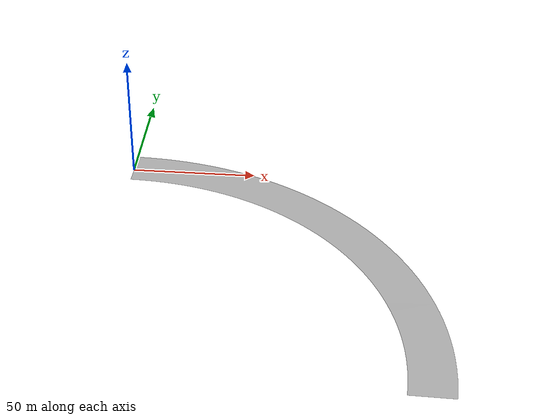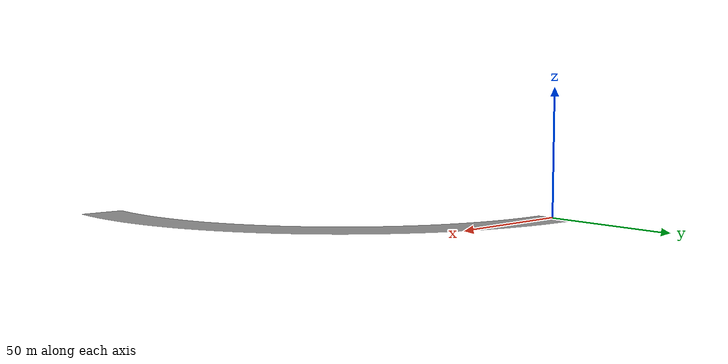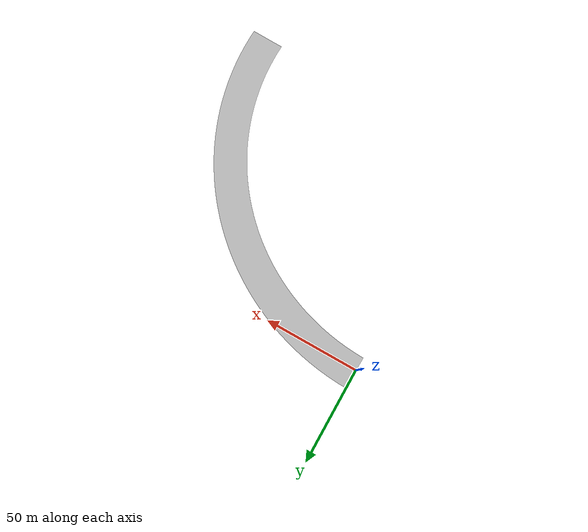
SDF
<?xml version="1.0" ?>
<sdf version="1.4">
  <model name="curve200_R">
    <static>true</static>
    <link name="link">
      <inertial>
        <pose>0 0 0 0 0 0</pose>
        <mass>1</mass>
        <inertia>
          <ixx>1</ixx>
          <iyy>1</iyy>
          <izz>1</izz>
          <ixy>0</ixy>
          <ixz>0</ixz>
        </inertia>
      </inertial>
      <collision name="collision">
        <geometry>
          <mesh>
            <uri>/home/aws/oscar/catkin_ws/src/fusion/aws_models/blender_files/curve200_R.dae</uri>
          </mesh>
        </geometry>
      </collision>

      <visual name="visual">
        <geometry>
          <mesh>
            <uri>/home/aws/oscar/catkin_ws/src/fusion/aws_models/blender_files/curve200_R.dae</uri>
          </mesh>
        </geometry>
      </visual>
    </link>
  </model>
</sdf>
